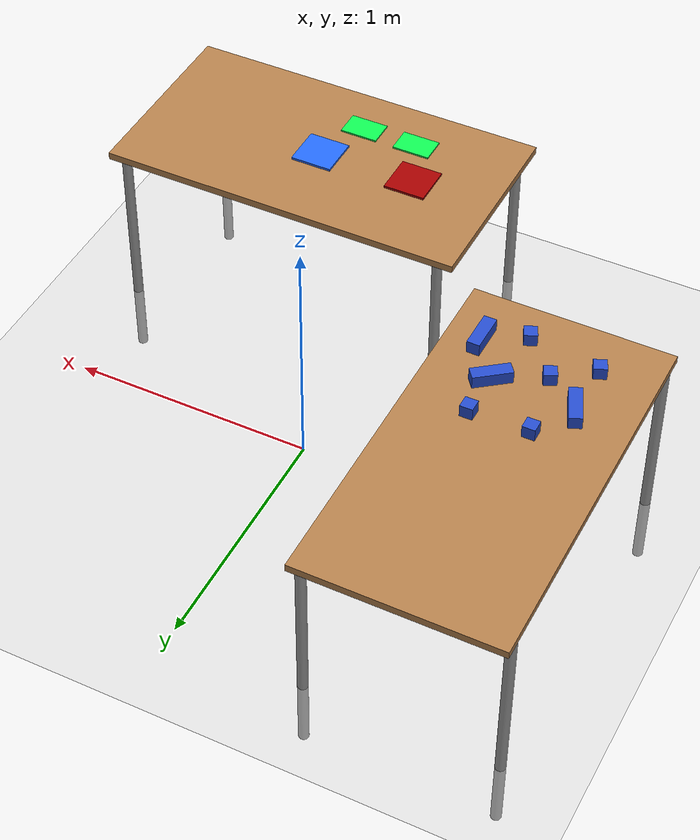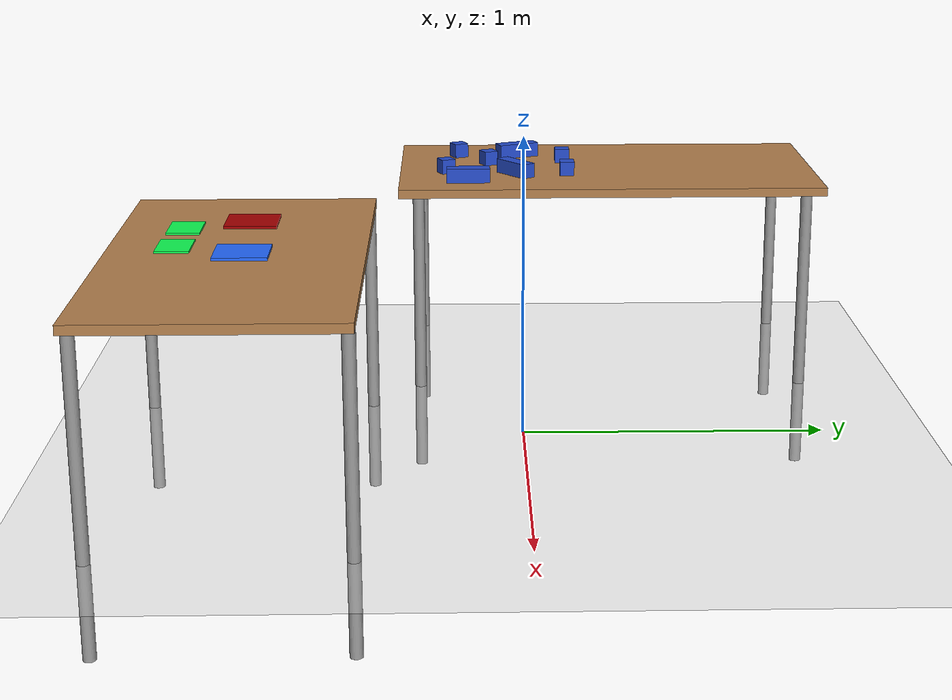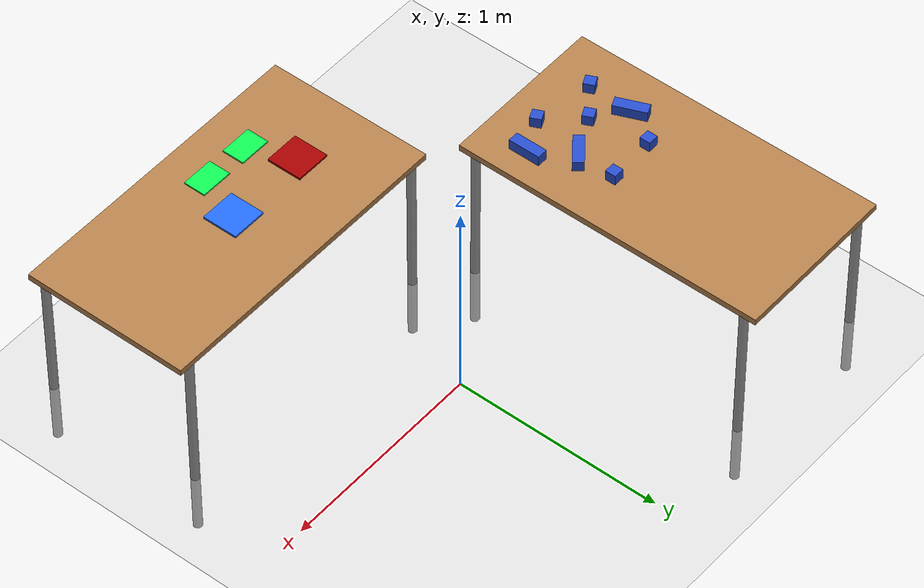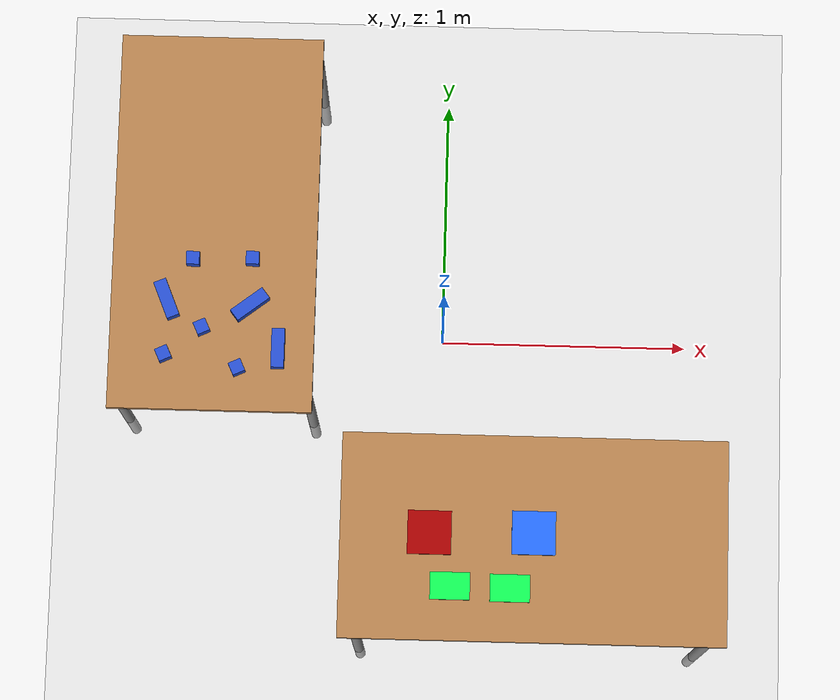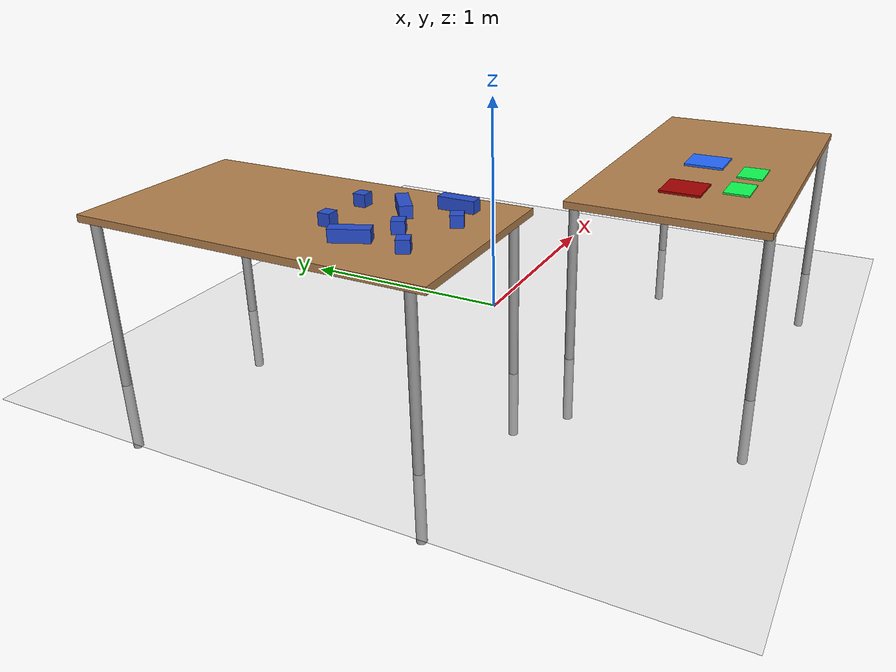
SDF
<sdf version="1.7">
 <world name="default">
  <light name="sun" type="directional">
   <pose>0 0 10 0 -0 0</pose>
   <diffuse>0.8 0.8 0.8 1</diffuse>
   <specular>0.2 0.2 0.2 1</specular>
   <attenuation>
    <range>1000</range>
    <constant>0.9</constant>
    <linear>0.01</linear>
    <quadratic>0.001</quadratic>
   </attenuation>
   <direction>-0.5 0.1 -0.9</direction>
   <spot><inner_angle>0</inner_angle><outer_angle>0</outer_angle><falloff>0</falloff></spot>
  </light>
  <model name="ground_plane">
   <static>1</static>
   <link name="link">
    <collision name="collision">
     <geometry><plane><normal>0 0 1</normal><size>100 100</size></plane></geometry>
     <surface>
      <contact><collide_bitmask>65535</collide_bitmask></contact>
      <friction><ode><mu>100</mu><mu2>50</mu2></ode></friction>
     </surface>
    </collision>
    <visual name="visual">
     <cast_shadows>0</cast_shadows>
     <geometry><plane><normal>0 0 1</normal><size>100 100</size></plane></geometry>
     <material>
      <script><uri>file://media/materials/scripts/gazebo.material</uri><name>Gazebo/Grey</name></script>
     </material>
    </visual>
   </link>
  </model>
  <gravity>0 0 -9.8</gravity>
  <magnetic_field>6e-06 2.3e-05 -4.2e-05</magnetic_field>
  <atmosphere type="adiabatic"/>
  <physics type="ode">
   <max_step_size>0.001</max_step_size>
   <real_time_factor>1</real_time_factor>
   <real_time_update_rate>1000</real_time_update_rate>
  </physics>
  <scene><ambient>0.4 0.4 0.4 1</ambient><background>0.7 0.7 0.7 1</background><shadows>1</shadows></scene>
  <spherical_coordinates>
   <surface_model>EARTH_WGS84</surface_model>
   <latitude_deg>0</latitude_deg>
   <longitude_deg>0</longitude_deg>
   <elevation>0</elevation>
   <heading_deg>0</heading_deg>
  </spherical_coordinates>
  <model name="table">
   <static>1</static>
   <link name="link">
    <collision name="surface">
     <pose>0 0 1 0 -0 0</pose>
     <geometry><box><size>1.5 0.8 0.03</size></box></geometry>
     <surface><friction><ode><mu>0.6</mu><mu2>0.6</mu2></ode></friction></surface>
    </collision>
    <visual name="visual1">
     <pose>0 0 1 0 -0 0</pose>
     <geometry><box><size>1.5 0.8 0.03</size></box></geometry>
     <material>
      <script><uri>file://media/materials/scripts/gazebo.material</uri><name>Gazebo/Wood</name></script>
     </material>
    </visual>
    <collision name="front_left_leg">
     <pose>0.68 0.38 0.5 0 -0 0</pose>
     <geometry><cylinder><radius>0.02</radius><length>1</length></cylinder></geometry>
    </collision>
    <visual name="front_left_leg">
     <pose>0.68 0.38 0.5 0 -0 0</pose>
     <geometry><cylinder><radius>0.02</radius><length>1</length></cylinder></geometry>
     <material>
      <script><uri>file://media/materials/scripts/gazebo.material</uri><name>Gazebo/Grey</name></script>
     </material>
    </visual>
    <collision name="front_right_leg">
     <pose>0.68 -0.38 0.5 0 -0 0</pose>
     <geometry><cylinder><radius>0.02</radius><length>1</length></cylinder></geometry>
    </collision>
    <visual name="front_right_leg">
     <pose>0.68 -0.38 0.5 0 -0 0</pose>
     <geometry><cylinder><radius>0.02</radius><length>1</length></cylinder></geometry>
     <material>
      <script><uri>file://media/materials/scripts/gazebo.material</uri><name>Gazebo/Grey</name></script>
     </material>
    </visual>
    <collision name="back_right_leg">
     <pose>-0.68 -0.38 0.5 0 -0 0</pose>
     <geometry><cylinder><radius>0.02</radius><length>1</length></cylinder></geometry>
    </collision>
    <visual name="back_right_leg">
     <pose>-0.68 -0.38 0.5 0 -0 0</pose>
     <geometry><cylinder><radius>0.02</radius><length>1</length></cylinder></geometry>
     <material>
      <script><uri>file://media/materials/scripts/gazebo.material</uri><name>Gazebo/Grey</name></script>
     </material>
    </visual>
    <collision name="back_left_leg">
     <pose>-0.68 0.38 0.5 0 -0 0</pose>
     <geometry><cylinder><radius>0.02</radius><length>1</length></cylinder></geometry>
    </collision>
    <visual name="back_left_leg">
     <pose>-0.68 0.38 0.5 0 -0 0</pose>
     <geometry><cylinder><radius>0.02</radius><length>1</length></cylinder></geometry>
     <material>
      <script><uri>file://media/materials/scripts/gazebo.material</uri><name>Gazebo/Grey</name></script>
     </material>
    </visual>
   </link>
   <pose>0.369853 -0.889762 -0.3 0 -0 0</pose>
  </model>
  <model name="table_0">
   <static>1</static>
   <link name="link">
    <collision name="surface">
     <pose>0 0 1 0 -0 0</pose>
     <geometry><box><size>1.5 0.8 0.03</size></box></geometry>
     <surface><friction><ode><mu>0.6</mu><mu2>0.6</mu2></ode></friction></surface>
    </collision>
    <visual name="visual1">
     <pose>0 0 1 0 -0 0</pose>
     <geometry><box><size>1.5 0.8 0.03</size></box></geometry>
     <material>
      <script><uri>file://media/materials/scripts/gazebo.material</uri><name>Gazebo/Wood</name></script>
     </material>
    </visual>
    <collision name="front_left_leg">
     <pose>0.68 0.38 0.5 0 -0 0</pose>
     <geometry><cylinder><radius>0.02</radius><length>1</length></cylinder></geometry>
    </collision>
    <visual name="front_left_leg">
     <pose>0.68 0.38 0.5 0 -0 0</pose>
     <geometry><cylinder><radius>0.02</radius><length>1</length></cylinder></geometry>
     <material>
      <script><uri>file://media/materials/scripts/gazebo.material</uri><name>Gazebo/Grey</name></script>
     </material>
    </visual>
    <collision name="front_right_leg">
     <pose>0.68 -0.38 0.5 0 -0 0</pose>
     <geometry><cylinder><radius>0.02</radius><length>1</length></cylinder></geometry>
    </collision>
    <visual name="front_right_leg">
     <pose>0.68 -0.38 0.5 0 -0 0</pose>
     <geometry><cylinder><radius>0.02</radius><length>1</length></cylinder></geometry>
     <material>
      <script><uri>file://media/materials/scripts/gazebo.material</uri><name>Gazebo/Grey</name></script>
     </material>
    </visual>
    <collision name="back_right_leg">
     <pose>-0.68 -0.38 0.5 0 -0 0</pose>
     <geometry><cylinder><radius>0.02</radius><length>1</length></cylinder></geometry>
    </collision>
    <visual name="back_right_leg">
     <pose>-0.68 -0.38 0.5 0 -0 0</pose>
     <geometry><cylinder><radius>0.02</radius><length>1</length></cylinder></geometry>
     <material>
      <script><uri>file://media/materials/scripts/gazebo.material</uri><name>Gazebo/Grey</name></script>
     </material>
    </visual>
    <collision name="back_left_leg">
     <pose>-0.68 0.38 0.5 0 -0 0</pose>
     <geometry><cylinder><radius>0.02</radius><length>1</length></cylinder></geometry>
    </collision>
    <visual name="back_left_leg">
     <pose>-0.68 0.38 0.5 0 -0 0</pose>
     <geometry><cylinder><radius>0.02</radius><length>1</length></cylinder></geometry>
     <material>
      <script><uri>file://media/materials/scripts/gazebo.material</uri><name>Gazebo/Grey</name></script>
     </material>
    </visual>
   </link>
   <pose>-0.90432 0.330997 -0.3 0 0 -1.5708</pose>
  </model>
  <model name="red_plate">
   <link name="link">
    <inertial>
     <mass>1</mass>
     <inertia>
      <ixx>0.166667</ixx>
      <ixy>0</ixy>
      <ixz>0</ixz>
      <iyy>0.166667</iyy>
      <iyz>0</iyz>
      <izz>0.166667</izz>
     </inertia>
    </inertial>
    <visual name="visual">
     <geometry><box><size>0.169497 0.169497 0.009721</size></box></geometry>
     <material>
      <script><name>Gazebo/Grey</name><uri>file://media/materials/scripts/gazebo.material</uri></script>
      <shader type="pixel"><normal_map>__default__</normal_map></shader>
      <ambient>0.643 0 0 1</ambient>
      <diffuse>0.643 0 0 1</diffuse>
      <specular>0.643 0 0 1</specular>
      <emissive>0 0 0 1</emissive>
     </material>
    </visual>
    <collision name="collision">
     <geometry><box><size>0.169497 0.169497 0.009721</size></box></geometry>
     <surface>
      <friction>
       <ode><mu>1</mu><mu2>1</mu2><fdir1>0 0 0</fdir1><slip1>0</slip1><slip2>0</slip2></ode>
       <torsional>
        <coefficient>1</coefficient>
        <patch_radius>0</patch_radius>
        <surface_radius>0</surface_radius>
        <use_patch_radius>1</use_patch_radius>
        <ode><slip>0</slip></ode>
       </torsional>
      </friction>
      <bounce><restitution_coefficient>0</restitution_coefficient><threshold>1e+06</threshold></bounce>
      <contact>
       <collide_without_contact>0</collide_without_contact>
       <collide_without_contact_bitmask>1</collide_without_contact_bitmask>
       <collide_bitmask>1</collide_bitmask>
       <ode>
        <soft_cfm>0</soft_cfm>
        <soft_erp>0.2</soft_erp>
        <kp>1e+13</kp>
        <kd>1</kd>
        <max_vel>0.01</max_vel>
        <min_depth>0</min_depth>
       </ode>
       <bullet>
        <split_impulse>1</split_impulse>
        <split_impulse_penetration_threshold>-0.01</split_impulse_penetration_threshold>
        <soft_cfm>0</soft_cfm>
        <soft_erp>0.2</soft_erp>
        <kp>1e+13</kp>
        <kd>1</kd>
       </bullet>
      </contact>
     </surface>
    </collision>
   </link>
   <static>0</static>
   <pose>-0.033504 -0.875152 0.71986 0 3e-06 1.3e-05</pose>
  </model>
  <model name="unit_box_red">
   <link name="link">
    <inertial>
     <mass>0.00013169</mass>
     <inertia><ixx>6e-08</ixx><ixy>0</ixy><ixz>0</ixz><iyy>6e-08</iyy><iyz>0</iyz><izz>6e-08</izz></inertia>
    </inertial>
    <visual name="visual">
     <geometry><box><size>0.050877 0.050877 0.050877</size></box></geometry>
     <material>
      <script><name>Gazebo/Blue</name><uri>file://media/materials/scripts/gazebo.material</uri></script>
      <shader type="pixel"><normal_map>__default__</normal_map></shader>
      <ambient>0.639 0 0 1</ambient>
      <diffuse>0.639 0 0 1</diffuse>
      <specular>0.639 0 0 1</specular>
      <emissive>0 0 0 1</emissive>
     </material>
    </visual>
    <collision name="collision">
     <geometry><box><size>0.050877 0.050877 0.050877</size></box></geometry>
     <surface>
      <friction>
       <ode><mu>50</mu><mu2>50</mu2><fdir1>0 0 0</fdir1><slip1>0</slip1><slip2>0</slip2></ode>
       <torsional>
        <coefficient>1</coefficient>
        <patch_radius>0</patch_radius>
        <surface_radius>0</surface_radius>
        <use_patch_radius>1</use_patch_radius>
        <ode><slip>0</slip></ode>
       </torsional>
      </friction>
      <bounce><restitution_coefficient>0</restitution_coefficient><threshold>1e+06</threshold></bounce>
      <contact>
       <collide_without_contact>0</collide_without_contact>
       <collide_without_contact_bitmask>1</collide_without_contact_bitmask>
       <collide_bitmask>1</collide_bitmask>
       <ode>
        <soft_cfm>0</soft_cfm>
        <soft_erp>0.2</soft_erp>
        <kp>1e+13</kp>
        <kd>1</kd>
        <max_vel>0.01</max_vel>
        <min_depth>0</min_depth>
       </ode>
       <bullet>
        <split_impulse>1</split_impulse>
        <split_impulse_penetration_threshold>-0.01</split_impulse_penetration_threshold>
        <soft_cfm>0</soft_cfm>
        <soft_erp>0.2</soft_erp>
        <kp>1e+13</kp>
        <kd>1</kd>
       </bullet>
      </contact>
     </surface>
    </collision>
   </link>
   <static>0</static>
   <pose>-0.752951 0.180504 0.740437 -1.6e-05 6.5e-05 7.6e-05</pose>
  </model>
  <light name="user_directional_light_0" type="directional">
   <pose>-1.54101 4.83803 1 0 -0 0</pose>
   <diffuse>0.5 0.5 0.5 1</diffuse>
   <specular>0.1 0.1 0.1 1</specular>
   <direction>0.1 0.1 -0.9</direction>
   <attenuation>
    <range>20</range>
    <constant>0.5</constant>
    <linear>0.01</linear>
    <quadratic>0.001</quadratic>
   </attenuation>
   <spot><inner_angle>0</inner_angle><outer_angle>0</outer_angle><falloff>0</falloff></spot>
  </light>
  <light name="user_directional_light_1" type="directional">
   <pose>2.08768 -0.242222 1 0 -0 0</pose>
   <diffuse>0.5 0.5 0.5 1</diffuse>
   <specular>0.1 0.1 0.1 1</specular>
   <direction>0.1 0.1 -0.9</direction>
   <attenuation>
    <range>20</range>
    <constant>0.5</constant>
    <linear>0.01</linear>
    <quadratic>0.001</quadratic>
   </attenuation>
   <spot><inner_angle>0</inner_angle><outer_angle>0</outer_angle><falloff>0</falloff></spot>
  </light>
  <model name="green_plate">
   <link name="link">
    <inertial>
     <mass>1</mass>
     <inertia>
      <ixx>0.166667</ixx>
      <ixy>0</ixy>
      <ixz>0</ixz>
      <iyy>0.166667</iyy>
      <iyz>0</iyz>
      <izz>0.166667</izz>
     </inertia>
    </inertial>
    <visual name="visual">
     <geometry><box><size>0.154588 0.106633 0.006976</size></box></geometry>
     <material>
      <script><name>Gazebo/Grey</name><uri>file://media/materials/scripts/gazebo.material</uri></script>
      <shader type="pixel"><normal_map>__default__</normal_map></shader>
      <ambient>0.052 1 0.32 1</ambient>
      <diffuse>0.052 1 0.32 1</diffuse>
      <specular>0 0 0 1</specular>
      <emissive>0 0 0 1</emissive>
     </material>
    </visual>
    <collision name="collision">
     <geometry><box><size>0.154588 0.106633 0.006976</size></box></geometry>
     <surface>
      <friction>
       <ode><mu>1</mu><mu2>1</mu2><fdir1>0 0 0</fdir1><slip1>0</slip1><slip2>0</slip2></ode>
       <torsional>
        <coefficient>1</coefficient>
        <patch_radius>0</patch_radius>
        <surface_radius>0</surface_radius>
        <use_patch_radius>1</use_patch_radius>
        <ode><slip>0</slip></ode>
       </torsional>
      </friction>
      <bounce><restitution_coefficient>0</restitution_coefficient><threshold>1e+06</threshold></bounce>
      <contact>
       <collide_without_contact>0</collide_without_contact>
       <collide_without_contact_bitmask>1</collide_without_contact_bitmask>
       <collide_bitmask>1</collide_bitmask>
       <ode>
        <soft_cfm>0</soft_cfm>
        <soft_erp>0.2</soft_erp>
        <kp>1e+13</kp>
        <kd>1</kd>
        <max_vel>0.01</max_vel>
        <min_depth>0</min_depth>
       </ode>
       <bullet>
        <split_impulse>1</split_impulse>
        <split_impulse_penetration_threshold>-0.01</split_impulse_penetration_threshold>
        <soft_cfm>0</soft_cfm>
        <soft_erp>0.2</soft_erp>
        <kp>1e+13</kp>
        <kd>1</kd>
       </bullet>
      </contact>
     </surface>
    </collision>
   </link>
   <static>0</static>
   <pose>0.050514 -1.07972 0.718488 0 -0 2e-05</pose>
  </model>
  <model name="green_plate_clone">
   <link name="link">
    <inertial>
     <mass>1</mass>
     <inertia>
      <ixx>0.166667</ixx>
      <ixy>0</ixy>
      <ixz>0</ixz>
      <iyy>0.166667</iyy>
      <iyz>0</iyz>
      <izz>0.166667</izz>
     </inertia>
    </inertial>
    <visual name="visual">
     <geometry><box><size>0.154588 0.106633 0.006976</size></box></geometry>
     <material>
      <script><name>Gazebo/Grey</name><uri>file://media/materials/scripts/gazebo.material</uri></script>
      <shader type="pixel"><normal_map>__default__</normal_map></shader>
      <ambient>0.052 1 0.32 1</ambient>
      <diffuse>0.052 1 0.32 1</diffuse>
      <specular>0 0 0 1</specular>
      <emissive>0 0 0 1</emissive>
     </material>
    </visual>
    <collision name="collision">
     <geometry><box><size>0.154588 0.106633 0.006976</size></box></geometry>
     <surface>
      <friction>
       <ode><mu>1</mu><mu2>1</mu2><fdir1>0 0 0</fdir1><slip1>0</slip1><slip2>0</slip2></ode>
       <torsional>
        <coefficient>1</coefficient>
        <patch_radius>0</patch_radius>
        <surface_radius>0</surface_radius>
        <use_patch_radius>1</use_patch_radius>
        <ode><slip>0</slip></ode>
       </torsional>
      </friction>
      <bounce><restitution_coefficient>0</restitution_coefficient><threshold>1e+06</threshold></bounce>
      <contact>
       <collide_without_contact>0</collide_without_contact>
       <collide_without_contact_bitmask>1</collide_without_contact_bitmask>
       <collide_bitmask>1</collide_bitmask>
       <ode>
        <soft_cfm>0</soft_cfm>
        <soft_erp>0.2</soft_erp>
        <kp>1e+13</kp>
        <kd>1</kd>
        <max_vel>0.01</max_vel>
        <min_depth>0</min_depth>
       </ode>
       <bullet>
        <split_impulse>1</split_impulse>
        <split_impulse_penetration_threshold>-0.01</split_impulse_penetration_threshold>
        <soft_cfm>0</soft_cfm>
        <soft_erp>0.2</soft_erp>
        <kp>1e+13</kp>
        <kd>1</kd>
       </bullet>
      </contact>
     </surface>
    </collision>
   </link>
   <static>0</static>
   <pose>0.282083 -1.08296 0.718488 0 -0 1.7e-05</pose>
  </model>
  <model name="blue_plate">
   <link name="link">
    <inertial>
     <mass>1</mass>
     <inertia>
      <ixx>0.166667</ixx>
      <ixy>0</ixy>
      <ixz>0</ixz>
      <iyy>0.166667</iyy>
      <iyz>0</iyz>
      <izz>0.166667</izz>
     </inertia>
    </inertial>
    <visual name="visual">
     <geometry><box><size>0.169497 0.169497 0.009721</size></box></geometry>
     <material>
      <script><name>Gazebo/Grey</name><uri>file://media/materials/scripts/gazebo.material</uri></script>
      <shader type="pixel"><normal_map>__default__</normal_map></shader>
      <ambient>0.14 0.412 1 1</ambient>
      <diffuse>0.14 0.412 1 1</diffuse>
      <specular>0 0 0 1</specular>
      <emissive>0 0 0 1</emissive>
     </material>
    </visual>
    <collision name="collision">
     <geometry><box><size>0.169497 0.169497 0.009721</size></box></geometry>
     <surface>
      <friction>
       <ode><mu>1</mu><mu2>1</mu2><fdir1>0 0 0</fdir1><slip1>0</slip1><slip2>0</slip2></ode>
       <torsional>
        <coefficient>1</coefficient>
        <patch_radius>0</patch_radius>
        <surface_radius>0</surface_radius>
        <use_patch_radius>1</use_patch_radius>
        <ode><slip>0</slip></ode>
       </torsional>
      </friction>
      <bounce><restitution_coefficient>0</restitution_coefficient><threshold>1e+06</threshold></bounce>
      <contact>
       <collide_without_contact>0</collide_without_contact>
       <collide_without_contact_bitmask>1</collide_without_contact_bitmask>
       <collide_bitmask>1</collide_bitmask>
       <ode>
        <soft_cfm>0</soft_cfm>
        <soft_erp>0.2</soft_erp>
        <kp>1e+13</kp>
        <kd>1</kd>
        <max_vel>0.01</max_vel>
        <min_depth>0</min_depth>
       </ode>
       <bullet>
        <split_impulse>1</split_impulse>
        <split_impulse_penetration_threshold>-0.01</split_impulse_penetration_threshold>
        <soft_cfm>0</soft_cfm>
        <soft_erp>0.2</soft_erp>
        <kp>1e+13</kp>
        <kd>1</kd>
       </bullet>
      </contact>
     </surface>
    </collision>
   </link>
   <static>0</static>
   <pose>0.369506 -0.867468 0.71986 0 3e-06 1.2e-05</pose>
  </model>
  <model name="unit_box_red_clone">
   <link name="link">
    <inertial>
     <mass>0.00013169</mass>
     <inertia><ixx>6e-08</ixx><ixy>0</ixy><ixz>0</ixz><iyy>6e-08</iyy><iyz>0</iyz><izz>6e-08</izz></inertia>
    </inertial>
    <visual name="visual">
     <geometry><box><size>0.050877 0.050877 0.050877</size></box></geometry>
     <material>
      <script><name>Gazebo/Blue</name><uri>file://media/materials/scripts/gazebo.material</uri></script>
      <shader type="pixel"><normal_map>__default__</normal_map></shader>
      <ambient>0.639 0 0 1</ambient>
      <diffuse>0.639 0 0 1</diffuse>
      <specular>0.639 0 0 1</specular>
      <emissive>0 0 0 1</emissive>
     </material>
    </visual>
    <collision name="collision">
     <geometry><box><size>0.050877 0.050877 0.050877</size></box></geometry>
     <surface>
      <friction>
       <ode><mu>50</mu><mu2>50</mu2><fdir1>0 0 0</fdir1><slip1>0</slip1><slip2>0</slip2></ode>
       <torsional>
        <coefficient>1</coefficient>
        <patch_radius>0</patch_radius>
        <surface_radius>0</surface_radius>
        <use_patch_radius>1</use_patch_radius>
        <ode><slip>0</slip></ode>
       </torsional>
      </friction>
      <bounce><restitution_coefficient>0</restitution_coefficient><threshold>1e+06</threshold></bounce>
      <contact>
       <collide_without_contact>0</collide_without_contact>
       <collide_without_contact_bitmask>1</collide_without_contact_bitmask>
       <collide_bitmask>1</collide_bitmask>
       <ode>
        <soft_cfm>0</soft_cfm>
        <soft_erp>0.2</soft_erp>
        <kp>1e+13</kp>
        <kd>1</kd>
        <max_vel>0.01</max_vel>
        <min_depth>0</min_depth>
       </ode>
       <bullet>
        <split_impulse>1</split_impulse>
        <split_impulse_penetration_threshold>-0.01</split_impulse_penetration_threshold>
        <soft_cfm>0</soft_cfm>
        <soft_erp>0.2</soft_erp>
        <kp>1e+13</kp>
        <kd>1</kd>
       </bullet>
      </contact>
     </surface>
    </collision>
   </link>
   <static>0</static>
   <pose>-0.942449 -0.097431 0.740435 9.5e-05 1e-05 0.431705</pose>
  </model>
  <model name="blue_cube">
   <link name="link">
    <inertial>
     <mass>0.00039528</mass>
     <inertia><ixx>8.5e-07</ixx><ixy>0</ixy><ixz>0</ixz><iyy>1.7e-07</iyy><iyz>0</iyz><izz>8.5e-07</izz></inertia>
    </inertial>
    <visual name="visual">
     <geometry><box><size>0.050877 0.152723 0.050877</size></box></geometry>
     <material>
      <script><name>Gazebo/Blue</name><uri>file://media/materials/scripts/gazebo.material</uri></script>
      <shader type="pixel"><normal_map>__default__</normal_map></shader>
      <ambient>0.14 0.412 1 1</ambient>
      <diffuse>0.14 0.412 1 1</diffuse>
      <specular>0.639 0 0 1</specular>
      <emissive>0 0 0 1</emissive>
     </material>
    </visual>
    <collision name="collision">
     <geometry><box><size>0.050877 0.152723 0.050877</size></box></geometry>
     <surface>
      <friction>
       <ode><mu>50</mu><mu2>50</mu2><fdir1>0 0 0</fdir1><slip1>0</slip1><slip2>0</slip2></ode>
       <torsional>
        <coefficient>1</coefficient>
        <patch_radius>0</patch_radius>
        <surface_radius>0</surface_radius>
        <use_patch_radius>1</use_patch_radius>
        <ode><slip>0</slip></ode>
       </torsional>
      </friction>
      <bounce><restitution_coefficient>0</restitution_coefficient><threshold>1e+06</threshold></bounce>
      <contact>
       <collide_without_contact>0</collide_without_contact>
       <collide_without_contact_bitmask>1</collide_without_contact_bitmask>
       <collide_bitmask>1</collide_bitmask>
       <ode>
        <soft_cfm>0</soft_cfm>
        <soft_erp>0.2</soft_erp>
        <kp>1e+13</kp>
        <kd>1</kd>
        <max_vel>0.01</max_vel>
        <min_depth>0</min_depth>
       </ode>
       <bullet>
        <split_impulse>1</split_impulse>
        <split_impulse_penetration_threshold>-0.01</split_impulse_penetration_threshold>
        <soft_cfm>0</soft_cfm>
        <soft_erp>0.2</soft_erp>
        <kp>1e+13</kp>
        <kd>1</kd>
       </bullet>
      </contact>
     </surface>
    </collision>
   </link>
   <static>0</static>
   <pose>-1.08303 0.009811 0.740435 0 -0.000122 0.393381</pose>
  </model>
  <model name="blue_cube_clone">
   <link name="link">
    <inertial>
     <mass>0.00039528</mass>
     <inertia><ixx>8.5e-07</ixx><ixy>0</ixy><ixz>0</ixz><iyy>1.7e-07</iyy><iyz>0</iyz><izz>8.5e-07</izz></inertia>
    </inertial>
    <visual name="visual">
     <geometry><box><size>0.050877 0.152723 0.050877</size></box></geometry>
     <material>
      <script><name>Gazebo/Blue</name><uri>file://media/materials/scripts/gazebo.material</uri></script>
      <shader type="pixel"><normal_map>__default__</normal_map></shader>
      <ambient>0.14 0.412 1 1</ambient>
      <diffuse>0.14 0.412 1 1</diffuse>
      <specular>0.639 0 0 1</specular>
      <emissive>0 0 0 1</emissive>
     </material>
    </visual>
    <collision name="collision">
     <geometry><box><size>0.050877 0.152723 0.050877</size></box></geometry>
     <surface>
      <friction>
       <ode><mu>50</mu><mu2>50</mu2><fdir1>0 0 0</fdir1><slip1>0</slip1><slip2>0</slip2></ode>
       <torsional>
        <coefficient>1</coefficient>
        <patch_radius>0</patch_radius>
        <surface_radius>0</surface_radius>
        <use_patch_radius>1</use_patch_radius>
        <ode><slip>0</slip></ode>
       </torsional>
      </friction>
      <bounce><restitution_coefficient>0</restitution_coefficient><threshold>1e+06</threshold></bounce>
      <contact>
       <collide_without_contact>0</collide_without_contact>
       <collide_without_contact_bitmask>1</collide_without_contact_bitmask>
       <collide_bitmask>1</collide_bitmask>
       <ode>
        <soft_cfm>0</soft_cfm>
        <soft_erp>0.2</soft_erp>
        <kp>1e+13</kp>
        <kd>1</kd>
        <max_vel>0.01</max_vel>
        <min_depth>0</min_depth>
       </ode>
       <bullet>
        <split_impulse>1</split_impulse>
        <split_impulse_penetration_threshold>-0.01</split_impulse_penetration_threshold>
        <soft_cfm>0</soft_cfm>
        <soft_erp>0.2</soft_erp>
        <kp>1e+13</kp>
        <kd>1</kd>
       </bullet>
      </contact>
     </surface>
    </collision>
   </link>
   <static>0</static>
   <pose>-0.75603 -0.003966 0.740439 -0 -0 -0.915291</pose>
  </model>
  <model name="unit_box_red_clone_0">
   <link name="link">
    <inertial>
     <mass>0.00013169</mass>
     <inertia><ixx>6e-08</ixx><ixy>0</ixy><ixz>0</ixz><iyy>6e-08</iyy><iyz>0</iyz><izz>6e-08</izz></inertia>
    </inertial>
    <visual name="visual">
     <geometry><box><size>0.050877 0.050877 0.050877</size></box></geometry>
     <material>
      <script><name>Gazebo/Blue</name><uri>file://media/materials/scripts/gazebo.material</uri></script>
      <shader type="pixel"><normal_map>__default__</normal_map></shader>
      <ambient>0.639 0 0 1</ambient>
      <diffuse>0.639 0 0 1</diffuse>
      <specular>0.639 0 0 1</specular>
      <emissive>0 0 0 1</emissive>
     </material>
    </visual>
    <collision name="collision">
     <geometry><box><size>0.050877 0.050877 0.050877</size></box></geometry>
     <surface>
      <friction>
       <ode><mu>50</mu><mu2>50</mu2><fdir1>0 0 0</fdir1><slip1>0</slip1><slip2>0</slip2></ode>
       <torsional>
        <coefficient>1</coefficient>
        <patch_radius>0</patch_radius>
        <surface_radius>0</surface_radius>
        <use_patch_radius>1</use_patch_radius>
        <ode><slip>0</slip></ode>
       </torsional>
      </friction>
      <bounce><restitution_coefficient>0</restitution_coefficient><threshold>1e+06</threshold></bounce>
      <contact>
       <collide_without_contact>0</collide_without_contact>
       <collide_without_contact_bitmask>1</collide_without_contact_bitmask>
       <collide_bitmask>1</collide_bitmask>
       <ode>
        <soft_cfm>0</soft_cfm>
        <soft_erp>0.2</soft_erp>
        <kp>1e+13</kp>
        <kd>1</kd>
        <max_vel>0.01</max_vel>
        <min_depth>0</min_depth>
       </ode>
       <bullet>
        <split_impulse>1</split_impulse>
        <split_impulse_penetration_threshold>-0.01</split_impulse_penetration_threshold>
        <soft_cfm>0</soft_cfm>
        <soft_erp>0.2</soft_erp>
        <kp>1e+13</kp>
        <kd>1</kd>
       </bullet>
      </contact>
     </surface>
    </collision>
   </link>
   <static>0</static>
   <pose>-0.985895 0.174104 0.740437 5e-06 6.5e-05 0.000191</pose>
  </model>
  <model name="unit_box_red_clone_clone">
   <link name="link">
    <inertial>
     <mass>0.00013169</mass>
     <inertia><ixx>6e-08</ixx><ixy>0</ixy><ixz>0</ixz><iyy>6e-08</iyy><iyz>0</iyz><izz>6e-08</izz></inertia>
    </inertial>
    <visual name="visual">
     <geometry><box><size>0.050877 0.050877 0.050877</size></box></geometry>
     <material>
      <script><name>Gazebo/Blue</name><uri>file://media/materials/scripts/gazebo.material</uri></script>
      <shader type="pixel"><normal_map>__default__</normal_map></shader>
      <ambient>0.639 0 0 1</ambient>
      <diffuse>0.639 0 0 1</diffuse>
      <specular>0.639 0 0 1</specular>
      <emissive>0 0 0 1</emissive>
     </material>
    </visual>
    <collision name="collision">
     <geometry><box><size>0.050877 0.050877 0.050877</size></box></geometry>
     <surface>
      <friction>
       <ode><mu>50</mu><mu2>50</mu2><fdir1>0 0 0</fdir1><slip1>0</slip1><slip2>0</slip2></ode>
       <torsional>
        <coefficient>1</coefficient>
        <patch_radius>0</patch_radius>
        <surface_radius>0</surface_radius>
        <use_patch_radius>1</use_patch_radius>
        <ode><slip>0</slip></ode>
       </torsional>
      </friction>
      <bounce><restitution_coefficient>0</restitution_coefficient><threshold>1e+06</threshold></bounce>
      <contact>
       <collide_without_contact>0</collide_without_contact>
       <collide_without_contact_bitmask>1</collide_without_contact_bitmask>
       <collide_bitmask>1</collide_bitmask>
       <ode>
        <soft_cfm>0</soft_cfm>
        <soft_erp>0.2</soft_erp>
        <kp>1e+13</kp>
        <kd>1</kd>
        <max_vel>0.01</max_vel>
        <min_depth>0</min_depth>
       </ode>
       <bullet>
        <split_impulse>1</split_impulse>
        <split_impulse_penetration_threshold>-0.01</split_impulse_penetration_threshold>
        <soft_cfm>0</soft_cfm>
        <soft_erp>0.2</soft_erp>
        <kp>1e+13</kp>
        <kd>1</kd>
       </bullet>
      </contact>
     </surface>
    </collision>
   </link>
   <static>0</static>
   <pose>-1.08786 -0.206584 0.740432 -9.5e-05 -1e-05 0.431705</pose>
  </model>
  <model name="unit_box_red_clone_clone_clone">
   <link name="link">
    <inertial>
     <mass>0.00013169</mass>
     <inertia><ixx>6e-08</ixx><ixy>0</ixy><ixz>0</ixz><iyy>6e-08</iyy><iyz>0</iyz><izz>6e-08</izz></inertia>
    </inertial>
    <visual name="visual">
     <geometry><box><size>0.050877 0.050877 0.050877</size></box></geometry>
     <material>
      <script><name>Gazebo/Blue</name><uri>file://media/materials/scripts/gazebo.material</uri></script>
      <shader type="pixel"><normal_map>__default__</normal_map></shader>
      <ambient>0.639 0 0 1</ambient>
      <diffuse>0.639 0 0 1</diffuse>
      <specular>0.639 0 0 1</specular>
      <emissive>0 0 0 1</emissive>
     </material>
    </visual>
    <collision name="collision">
     <geometry><box><size>0.050877 0.050877 0.050877</size></box></geometry>
     <surface>
      <friction>
       <ode><mu>50</mu><mu2>50</mu2><fdir1>0 0 0</fdir1><slip1>0</slip1><slip2>0</slip2></ode>
       <torsional>
        <coefficient>1</coefficient>
        <patch_radius>0</patch_radius>
        <surface_radius>0</surface_radius>
        <use_patch_radius>1</use_patch_radius>
        <ode><slip>0</slip></ode>
       </torsional>
      </friction>
      <bounce><restitution_coefficient>0</restitution_coefficient><threshold>1e+06</threshold></bounce>
      <contact>
       <collide_without_contact>0</collide_without_contact>
       <collide_without_contact_bitmask>1</collide_without_contact_bitmask>
       <collide_bitmask>1</collide_bitmask>
       <ode>
        <soft_cfm>0</soft_cfm>
        <soft_erp>0.2</soft_erp>
        <kp>1e+13</kp>
        <kd>1</kd>
        <max_vel>0.01</max_vel>
        <min_depth>0</min_depth>
       </ode>
       <bullet>
        <split_impulse>1</split_impulse>
        <split_impulse_penetration_threshold>-0.01</split_impulse_penetration_threshold>
        <soft_cfm>0</soft_cfm>
        <soft_erp>0.2</soft_erp>
        <kp>1e+13</kp>
        <kd>1</kd>
       </bullet>
      </contact>
     </surface>
    </collision>
   </link>
   <static>0</static>
   <pose>-0.799488 -0.253644 0.740433 0.000102 7.3e-05 0.431809</pose>
  </model>
  <model name="blue_cube_clone_clone">
   <link name="link">
    <inertial>
     <mass>0.00039528</mass>
     <inertia><ixx>8.5e-07</ixx><ixy>0</ixy><ixz>0</ixz><iyy>1.7e-07</iyy><iyz>0</iyz><izz>8.5e-07</izz></inertia>
    </inertial>
    <visual name="visual">
     <geometry><box><size>0.050877 0.152723 0.050877</size></box></geometry>
     <material>
      <script><name>Gazebo/Blue</name><uri>file://media/materials/scripts/gazebo.material</uri></script>
      <shader type="pixel"><normal_map>__default__</normal_map></shader>
      <ambient>0.14 0.412 1 1</ambient>
      <diffuse>0.14 0.412 1 1</diffuse>
      <specular>0.639 0 0 1</specular>
      <emissive>0 0 0 1</emissive>
     </material>
    </visual>
    <collision name="collision">
     <geometry><box><size>0.050877 0.152723 0.050877</size></box></geometry>
     <surface>
      <friction>
       <ode><mu>50</mu><mu2>50</mu2><fdir1>0 0 0</fdir1><slip1>0</slip1><slip2>0</slip2></ode>
       <torsional>
        <coefficient>1</coefficient>
        <patch_radius>0</patch_radius>
        <surface_radius>0</surface_radius>
        <use_patch_radius>1</use_patch_radius>
        <ode><slip>0</slip></ode>
       </torsional>
      </friction>
      <bounce><restitution_coefficient>0</restitution_coefficient><threshold>1e+06</threshold></bounce>
      <contact>
       <collide_without_contact>0</collide_without_contact>
       <collide_without_contact_bitmask>1</collide_without_contact_bitmask>
       <collide_bitmask>1</collide_bitmask>
       <ode>
        <soft_cfm>0</soft_cfm>
        <soft_erp>0.2</soft_erp>
        <kp>1e+13</kp>
        <kd>1</kd>
        <max_vel>0.01</max_vel>
        <min_depth>0</min_depth>
       </ode>
       <bullet>
        <split_impulse>1</split_impulse>
        <split_impulse_penetration_threshold>-0.01</split_impulse_penetration_threshold>
        <soft_cfm>0</soft_cfm>
        <soft_erp>0.2</soft_erp>
        <kp>1e+13</kp>
        <kd>1</kd>
       </bullet>
      </contact>
     </surface>
    </collision>
   </link>
   <static>0</static>
   <pose>-0.642024 -0.174591 0.740433 7.9e-05 0 3.13769</pose>
  </model>
 </world>
</sdf>
